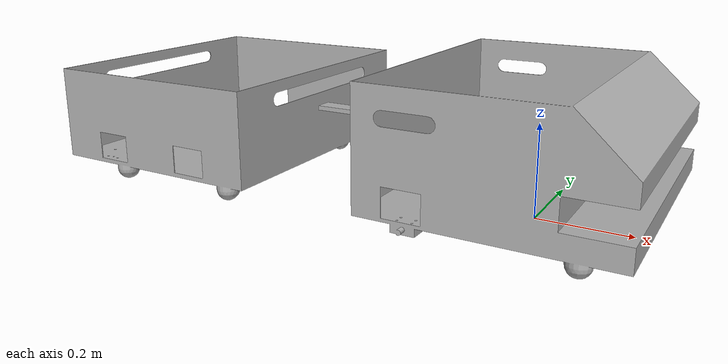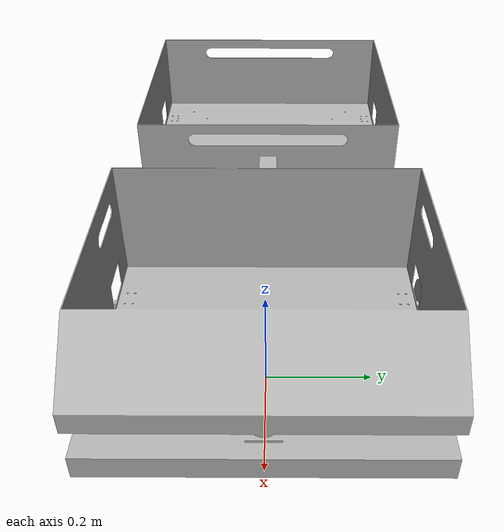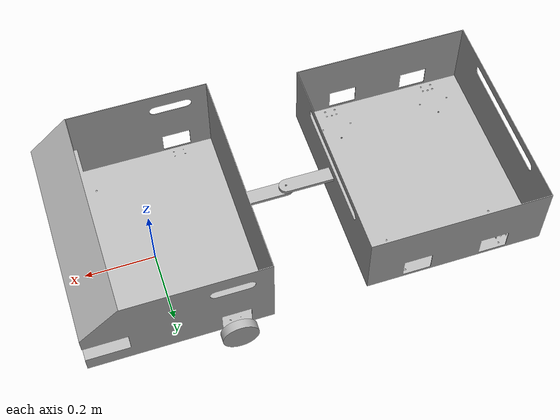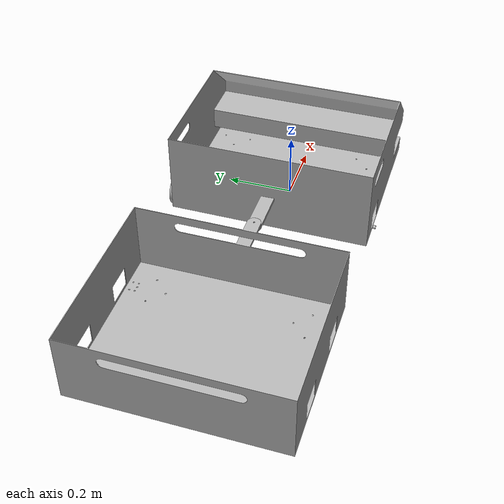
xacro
<?xml version="1.0" ?>
<robot name="agv_tov" xmlns:xacro="http://www.ros.org/wiki/xacro">

<xacro:include filename="$(find robot_two)/description/materials.xacro" />
<xacro:include filename="$(find robot_two)/description/agv_tov.trans" />
<xacro:include filename="$(find robot_two)/description/agv_tov.gazebo" />
<link name="base_link">
  <inertial>
    <origin xyz="0.022611676400965647 6.058500985421191e-05 0.1310385269338436" rpy="0 0 0"/>
    <mass value="18.769425535268965"/>
    <inertia ixx="0.929197" iyy="0.746272" izz="1.429864" ixy="-0.000145" iyz="0.000111" ixz="0.021353"/>
  </inertial>
  <visual>
    <origin xyz="0 0 0" rpy="0 0 0"/>
    <geometry>
      <mesh filename="package://install/robot_two/share/robot_two/meshes/base_link.stl" scale="0.001 0.001 0.001"/>
    </geometry>
    <material name="silver"/>
  </visual>
  <collision>
    <origin xyz="0 0 0" rpy="0 0 0"/>
    <geometry>
      <mesh filename="package://install/robot_two/share/robot_model/src/robot_two/meshes/base_link.stl" scale="0.001 0.001 0.001"/>
    </geometry>
  </collision>
</link>

<link name="left_wheel_1">
  <inertial>
    <origin xyz="-2.235174212383839e-09 0.012499999999999956 -1.490116086078075e-10" rpy="0 0 0"/>
    <mass value="0.1826050729899067"/>
    <inertia ixx="0.000124" iyy="0.000228" izz="0.000124" ixy="0.0" iyz="0.0" ixz="-0.0"/>
  </inertial>
  <visual>
    <origin xyz="0.15 -0.3095 -0.05" rpy="0 0 0"/>
    <geometry>
      <mesh filename="package://install/robot_two/share/robot_model/src/robot_two/meshes/left_wheel_1.stl" scale="0.001 0.001 0.001"/>
    </geometry>
    <material name="silver"/>
  </visual>
  <collision>
    <origin xyz="0.15 -0.3095 -0.05" rpy="0 0 0"/>
    <geometry>
      <mesh filename="package://install/robot_two/share/robot_model/src/robot_two/meshes/left_wheel_1.stl" scale="0.001 0.001 0.001"/>
    </geometry>
  </collision>
</link>

<link name="right_wheel_1">
  <inertial>
    <origin xyz="0.0 -0.012500000000000011 0.0" rpy="0 0 0"/>
    <mass value="0.1826050729899067"/>
    <inertia ixx="0.000124" iyy="0.000228" izz="0.000124" ixy="-0.0" iyz="0.0" ixz="0.0"/>
  </inertial>
  <visual>
    <origin xyz="0.15 0.3095 -0.05" rpy="0 0 0"/>
    <geometry>
      <mesh filename="package://install/robot_two/share/robot_model/src/robot_two/meshes/right_wheel_1.stl" scale="0.001 0.001 0.001"/>
    </geometry>
    <material name="silver"/>
  </visual>
  <collision>
    <origin xyz="0.15 0.3095 -0.05" rpy="0 0 0"/>
    <geometry>
      <mesh filename="package://install/robot_two/share/robot_model/src/robot_two/meshes/right_wheel_1.stl" scale="0.001 0.001 0.001"/>
    </geometry>
  </collision>
</link>

<link name="lidar_1">
  <inertial>
    <origin xyz="-5.551115123125783e-17 -3.618764437576269e-17 0.0050000000000000044" rpy="0 0 0"/>
    <mass value="0.020813051330032376"/>
    <inertia ixx="3e-06" iyy="3e-06" izz="7e-06" ixy="0.0" iyz="0.0" ixz="-0.0"/>
  </inertial>
  <visual>
    <origin xyz="-0.192 0.0 -0.122" rpy="0 0 0"/>
    <geometry>
      <mesh filename="package://install/robot_two/share/robot_model/src/robot_two/meshes/lidar_1.stl" scale="0.001 0.001 0.001"/>
    </geometry>
    <material name="silver"/>
  </visual>
  <collision>
    <origin xyz="-0.192 0.0 -0.122" rpy="0 0 0"/>
    <geometry>
      <mesh filename="package://install/robot_two/share/robot_model/src/robot_two/meshes/lidar_1.stl" scale="0.001 0.001 0.001"/>
    </geometry>
  </collision>
</link>

<link name="troll_1">
  <inertial>
    <origin xyz="-0.37193566331574424 -1.3573084735559999e-08 -0.06755066688671008" rpy="0 0 0"/>
    <mass value="14.993534531242972"/>
    <inertia ixx="0.755152" iyy="0.583551" izz="1.195149" ixy="0.0" iyz="-0.0" ixz="-0.010948"/>
  </inertial>
  <visual>
    <origin xyz="0.382 -0.0 -0.17" rpy="0 0 0"/>
    <geometry>
      <mesh filename="package://install/robot_two/share/robot_model/src/robot_two/meshes/troll_1.stl" scale="0.001 0.001 0.001"/>
    </geometry>
    <material name="silver"/>
  </visual>
  <collision>
    <origin xyz="0.382 -0.0 -0.17" rpy="0 0 0"/>
    <geometry>
      <mesh filename="package://install/robot_two/share/robot_model/src/robot_two/meshes/troll_1.stl" scale="0.001 0.001 0.001"/>
    </geometry>
  </collision>
</link>

<joint name="Rev1" type="continuous">
  <origin xyz="-0.15 0.3095 0.05" rpy="0 0 0"/>
  <parent link="base_link"/>
  <child link="left_wheel_1"/>
  <axis xyz="0.0 1.0 0.0"/>
</joint>

<joint name="Rev2" type="continuous">
  <origin xyz="-0.15 -0.3095 0.05" rpy="0 0 0"/>
  <parent link="base_link"/>
  <child link="right_wheel_1"/>
  <axis xyz="0.0 -1.0 0.0"/>
</joint>

<joint name="Rigid3" type="fixed">
  <origin xyz="0.192 0.0 0.122" rpy="0 0 0"/>
  <parent link="base_link"/>
  <child link="lidar_1"/>
</joint>

<joint name="Rev4" type="revolute">
  <origin xyz="-0.382 0.0 0.17" rpy="0 0 0"/>
  <parent link="base_link"/>
  <child link="troll_1"/>
  <axis xyz="0.0 0.0 1.0"/>
  <limit upper="0.785398" lower="-0.785398" effort="100" velocity="100"/>
</joint>

</robot>

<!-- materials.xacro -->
<robot name="agv_tov" xmlns:xacro="http://www.ros.org/wiki/xacro" >

<material name="silver">
  <color rgba="0.700 0.700 0.700 1.000"/>
</material>

</robot>

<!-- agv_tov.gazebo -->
<robot name="agv_tov" xmlns:xacro="http://www.ros.org/wiki/xacro" >

<xacro:property name="body_color" value="Gazebo/Silver" />

<gazebo>
  <plugin name="control" filename="libgazebo_ros_control.so"/>
</gazebo>
<gazebo reference="base_link">
  <material>${body_color}</material>
  <mu1>0.2</mu1>
  <mu2>0.2</mu2>
  <selfCollide>true</selfCollide>
  <gravity>true</gravity>
</gazebo>

<gazebo reference="left_wheel_1">
  <material>${body_color}</material>
  <mu1>0.2</mu1>
  <mu2>0.2</mu2>
  <selfCollide>true</selfCollide>
</gazebo>

<gazebo reference="right_wheel_1">
  <material>${body_color}</material>
  <mu1>0.2</mu1>
  <mu2>0.2</mu2>
  <selfCollide>true</selfCollide>
</gazebo>

<gazebo reference="lidar_1">
  <material>${body_color}</material>
  <mu1>0.2</mu1>
  <mu2>0.2</mu2>
  <selfCollide>true</selfCollide>
</gazebo>

<gazebo reference="troll_1">
  <material>${body_color}</material>
  <mu1>0.2</mu1>
  <mu2>0.2</mu2>
  <selfCollide>true</selfCollide>
</gazebo>

</robot>
